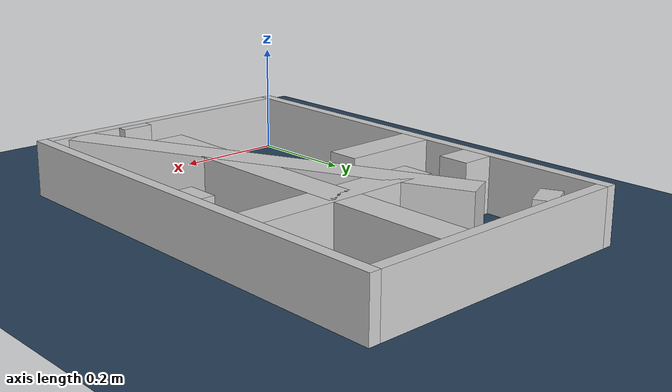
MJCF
<?xml version="1.0" ?>
<mujoco model="generated_real_template">
  <compiler angle="degree"/>
  <option timestep="0.002" integrator="implicitfast" iterations="100" cone="elliptic"/>
  <default>
    <geom density="1"/>
  </default>
  <asset>
    <texture builtin="gradient" height="3072" rgb1="0.3 0.5 0.7" rgb2="0 0 0" type="skybox" width="512"/>
    <texture builtin="checker" height="300" mark="edge" markrgb="0.8 0.8 0.8" name="groundplane" rgb1="0.2 0.3 0.4" rgb2="0.1 0.2 0.3" type="2d" width="300"/>
    <material name="groundplane" reflectance="0.2" texrepeat="5 5" texture="groundplane" texuniform="true"/>
  </asset>
  <worldbody>
    <light dir="0 0 -1" directional="true" pos="0 0 1.5"/>
    <geom name="floor" type="plane" condim="4" friction="0.5 0.005 0.001" material="groundplane" size="0 0 0.05"/>
    <body name="walls">
      <geom name="wall_boundary_left" type="box" condim="4" friction="1.0 0.005 0.0001" rgba="0.8 0.8 0.8 1" pos="-0.010000 0.387500 0.050000" euler="0 0 0.000000" size="0.010000 0.407500 0.050000"/>
      <geom name="wall_boundary_right" type="box" condim="4" friction="1.0 0.005 0.0001" rgba="0.8 0.8 0.8 1" pos="0.500000 0.387500 0.050000" euler="0 0 0.000000" size="0.010000 0.407500 0.050000"/>
      <geom name="wall_boundary_bottom" type="box" condim="4" friction="1.0 0.005 0.0001" rgba="0.8 0.8 0.8 1" pos="0.245000 -0.010000 0.050000" euler="0 0 0.000000" size="0.245000 0.010000 0.050000"/>
      <geom name="wall_boundary_top" type="box" condim="4" friction="1.0 0.005 0.0001" rgba="0.8 0.8 0.8 1" pos="0.245000 0.785000 0.050000" euler="0 0 0.000000" size="0.245000 0.010000 0.050000"/>
      <geom name="wall_inner_1_1" type="box" condim="4" friction="1.0 0.005 0.0001" rgba="0.8 0.8 0.8 1" pos="0.030067 0.541356 0.050000" euler="0 0 0.000000" size="0.030067 0.028500 0.050000"/>
      <geom name="wall_inner_1_2" type="box" condim="4" friction="1.0 0.005 0.0001" rgba="0.8 0.8 0.8 1" pos="0.317688 0.541356 0.050000" euler="0 0 0.000000" size="0.172312 0.028500 0.050000"/>
      <geom name="wall_inner_2_1" type="box" condim="4" friction="1.0 0.005 0.0001" rgba="0.8 0.8 0.8 1" pos="0.099724 0.758799 0.050000" euler="0 0 -65.911191" size="0.017747 0.028500 0.050000"/>
      <geom name="wall_inner_2_2" type="box" condim="4" friction="1.0 0.005 0.0001" rgba="0.8 0.8 0.8 1" pos="0.290239 0.332674 0.050000" euler="0 0 -65.911191" size="0.364409 0.028500 0.050000"/>
      <geom name="wall_inner_3_1" type="box" condim="4" friction="1.0 0.005 0.0001" rgba="0.8 0.8 0.8 1" pos="0.088120 0.401207 0.050000" euler="0 0 0.000000" size="0.088120 0.028500 0.050000"/>
      <geom name="wall_inner_3_2" type="box" condim="4" friction="1.0 0.005 0.0001" rgba="0.8 0.8 0.8 1" pos="0.477692 0.401207 0.050000" euler="0 0 0.000000" size="0.012308 0.028500 0.050000"/>
      <geom name="wall_inner_4_1" type="box" condim="4" friction="1.0 0.005 0.0001" rgba="0.8 0.8 0.8 1" pos="0.325568 0.009202 0.050000" euler="0 0 89.753923" size="0.009202 0.028500 0.050000"/>
      <geom name="wall_inner_4_2" type="box" condim="4" friction="1.0 0.005 0.0001" rgba="0.8 0.8 0.8 1" pos="0.327438 0.444799 0.050000" euler="0 0 89.753923" size="0.330204 0.028500 0.050000"/>
    </body>
  </worldbody>
</mujoco>
